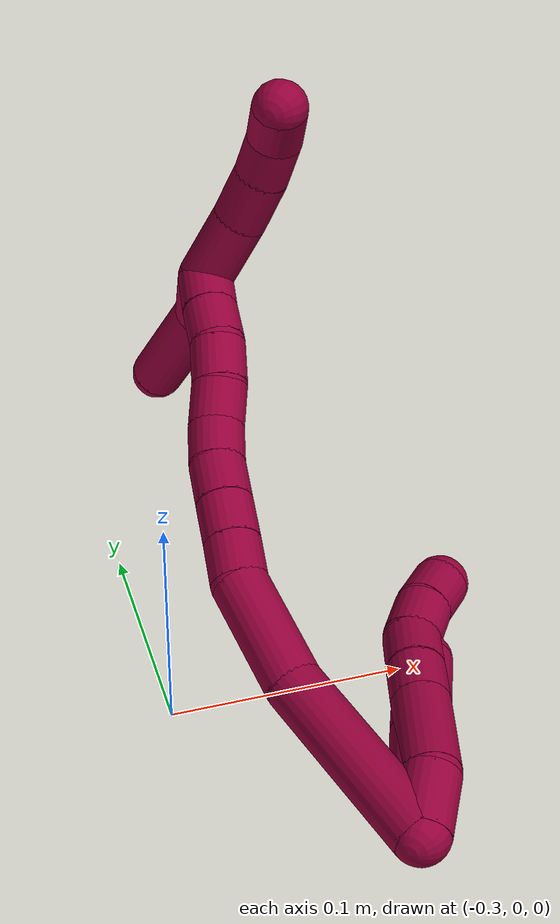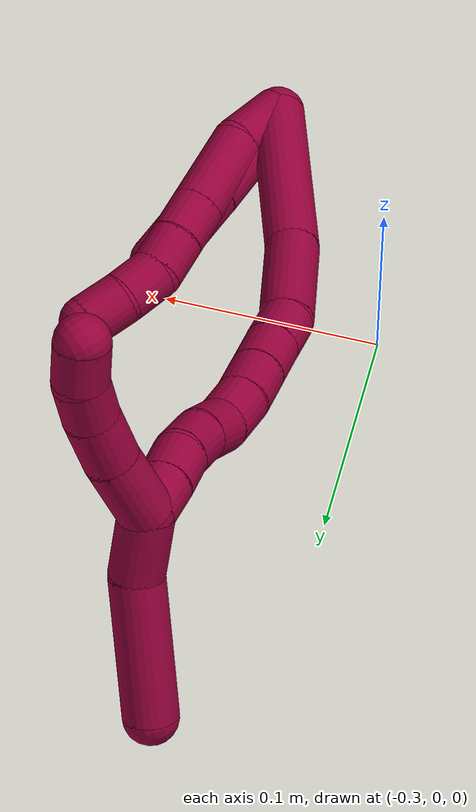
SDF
<sdf version="1.7">
 <world name="default">
  <model name="8">
   <static>0</static>
   <link name="8">
    <collision name="collision-cylinder-e_1_2_8">
     <pose>0.002889 0.004306 -0.013297 -2.82839 0.203852 -1.14964</pose>
     <geometry><cylinder><radius>0.0125</radius><length>0.028545</length></cylinder></geometry>
     <surface>
      <friction><ode><mu>1.16</mu><mu2>1.16</mu2><slip1>0</slip1><slip2>0</slip2></ode></friction>
      <contact><ode><kp>1e+06</kp><kd>1</kd><max_vel>0</max_vel><min_depth>0.001</min_depth></ode></contact>
     </surface>
    </collision>
    <visual name="visual-cylinder-e_1_2_8">
     <pose>0.002889 0.004306 -0.013297 -2.82839 0.203852 -1.14964</pose>
     <geometry><cylinder><radius>0.0125</radius><length>0.028545</length></cylinder></geometry>
     <material><ambient>0.584314 0 0.227451 1</ambient></material>
    </visual>
    <collision name="collision-cylinder-e_2_8_9">
     <pose>0.005214 0.018646 -0.04421 -2.62382 -0.02785 0.105074</pose>
     <geometry><cylinder><radius>0.0125</radius><length>0.04056</length></cylinder></geometry>
     <surface>
      <friction><ode><mu>1.16</mu><mu2>1.16</mu2><slip1>0</slip1><slip2>0</slip2></ode></friction>
      <contact><ode><kp>1e+06</kp><kd>1</kd><max_vel>0</max_vel><min_depth>0.001</min_depth></ode></contact>
     </surface>
    </collision>
    <visual name="visual-cylinder-e_2_8_9">
     <pose>0.005214 0.018646 -0.04421 -2.62382 -0.02785 0.105074</pose>
     <geometry><cylinder><radius>0.0125</radius><length>0.04056</length></cylinder></geometry>
     <material><ambient>0.584314 0 0.227451 1</ambient></material>
    </visual>
    <collision name="collision-cylinder-e_3_9_10">
     <pose>0.004427 0.033683 -0.070537 -2.62032 -0.022083 0.082756</pose>
     <geometry><cylinder><radius>0.0125</radius><length>0.020099</length></cylinder></geometry>
     <surface>
      <friction><ode><mu>1.16</mu><mu2>1.16</mu2><slip1>0</slip1><slip2>0</slip2></ode></friction>
      <contact><ode><kp>1e+06</kp><kd>1</kd><max_vel>0</max_vel><min_depth>0.001</min_depth></ode></contact>
     </surface>
    </collision>
    <visual name="visual-cylinder-e_3_9_10">
     <pose>0.004427 0.033683 -0.070537 -2.62032 -0.022083 0.082756</pose>
     <geometry><cylinder><radius>0.0125</radius><length>0.020099</length></cylinder></geometry>
     <material><ambient>0.584314 0 0.227451 1</ambient></material>
    </visual>
    <collision name="collision-cylinder-e_4_10_11">
     <pose>0.003386 0.043405 -0.0881 -2.65181 -0.081487 0.323401</pose>
     <geometry><cylinder><radius>0.0125</radius><length>0.020125</length></cylinder></geometry>
     <surface>
      <friction><ode><mu>1.16</mu><mu2>1.16</mu2><slip1>0</slip1><slip2>0</slip2></ode></friction>
      <contact><ode><kp>1e+06</kp><kd>1</kd><max_vel>0</max_vel><min_depth>0.001</min_depth></ode></contact>
     </surface>
    </collision>
    <visual name="visual-cylinder-e_4_10_11">
     <pose>0.003386 0.043405 -0.0881 -2.65181 -0.081487 0.323401</pose>
     <geometry><cylinder><radius>0.0125</radius><length>0.020125</length></cylinder></geometry>
     <material><ambient>0.584314 0 0.227451 1</ambient></material>
    </visual>
    <collision name="collision-cylinder-e_5_11_12">
     <pose>0.00312 0.049994 -0.106934 -2.95634 0.054384 -0.569662</pose>
     <geometry><cylinder><radius>0.0125</radius><length>0.020344</length></cylinder></geometry>
     <surface>
      <friction><ode><mu>1.16</mu><mu2>1.16</mu2><slip1>0</slip1><slip2>0</slip2></ode></friction>
      <contact><ode><kp>1e+06</kp><kd>1</kd><max_vel>0</max_vel><min_depth>0.001</min_depth></ode></contact>
     </surface>
    </collision>
    <visual name="visual-cylinder-e_5_11_12">
     <pose>0.00312 0.049994 -0.106934 -2.95634 0.054384 -0.569662</pose>
     <geometry><cylinder><radius>0.0125</radius><length>0.020344</length></cylinder></geometry>
     <material><ambient>0.584314 0 0.227451 1</ambient></material>
    </visual>
    <collision name="collision-cylinder-e_6_12_6">
     <pose>0.003242 0.052166 -0.127066 -3.11197 -0.042413 1.92215</pose>
     <geometry><cylinder><radius>0.0125</radius><length>0.020326</length></cylinder></geometry>
     <surface>
      <friction><ode><mu>1.16</mu><mu2>1.16</mu2><slip1>0</slip1><slip2>0</slip2></ode></friction>
      <contact><ode><kp>1e+06</kp><kd>1</kd><max_vel>0</max_vel><min_depth>0.001</min_depth></ode></contact>
     </surface>
    </collision>
    <visual name="visual-cylinder-e_6_12_6">
     <pose>0.003242 0.052166 -0.127066 -3.11197 -0.042413 1.92215</pose>
     <geometry><cylinder><radius>0.0125</radius><length>0.020326</length></cylinder></geometry>
     <material><ambient>0.584314 0 0.227451 1</ambient></material>
    </visual>
    <collision name="collision-cylinder-e_1_2_13">
     <pose>8.7e-05 0.01138 -0.025218 -2.71769 0.003153 -0.014651</pose>
     <geometry><cylinder><radius>0.0125</radius><length>0.055334</length></cylinder></geometry>
     <surface>
      <friction><ode><mu>1.16</mu><mu2>1.16</mu2><slip1>0</slip1><slip2>0</slip2></ode></friction>
      <contact><ode><kp>1e+06</kp><kd>1</kd><max_vel>0</max_vel><min_depth>0.001</min_depth></ode></contact>
     </surface>
    </collision>
    <visual name="visual-cylinder-e_1_2_13">
     <pose>8.7e-05 0.01138 -0.025218 -2.71769 0.003153 -0.014651</pose>
     <geometry><cylinder><radius>0.0125</radius><length>0.055334</length></cylinder></geometry>
     <material><ambient>0.584314 0 0.227451 1</ambient></material>
    </visual>
    <collision name="collision-cylinder-e_2_13_5">
     <pose>-0.00057 0.031064 -0.071155 -2.76038 -0.033325 0.1723</pose>
     <geometry><cylinder><radius>0.0125</radius><length>0.044666</length></cylinder></geometry>
     <surface>
      <friction><ode><mu>1.16</mu><mu2>1.16</mu2><slip1>0</slip1><slip2>0</slip2></ode></friction>
      <contact><ode><kp>1e+06</kp><kd>1</kd><max_vel>0</max_vel><min_depth>0.001</min_depth></ode></contact>
     </surface>
    </collision>
    <visual name="visual-cylinder-e_2_13_5">
     <pose>-0.00057 0.031064 -0.071155 -2.76038 -0.033325 0.1723</pose>
     <geometry><cylinder><radius>0.0125</radius><length>0.044666</length></cylinder></geometry>
     <material><ambient>0.584314 0 0.227451 1</ambient></material>
    </visual>
    <collision name="collision-cylinder-e_1_2_14">
     <pose>0.00118 0.038288 -0.020201 -2.05629 0.02726 -0.045199</pose>
     <geometry><cylinder><radius>0.0125</radius><length>0.086613</length></cylinder></geometry>
     <surface>
      <friction><ode><mu>1.16</mu><mu2>1.16</mu2><slip1>0</slip1><slip2>0</slip2></ode></friction>
      <contact><ode><kp>1e+06</kp><kd>1</kd><max_vel>0</max_vel><min_depth>0.001</min_depth></ode></contact>
     </surface>
    </collision>
    <visual name="visual-cylinder-e_1_2_14">
     <pose>0.00118 0.038288 -0.020201 -2.05629 0.02726 -0.045199</pose>
     <geometry><cylinder><radius>0.0125</radius><length>0.086613</length></cylinder></geometry>
     <material><ambient>0.584314 0 0.227451 1</ambient></material>
    </visual>
    <collision name="collision-cylinder-e_2_14_15">
     <pose>0.007797 0.097936 -0.054674 -2.15982 0.208551 -0.38669</pose>
     <geometry><cylinder><radius>0.0125</radius><length>0.052516</length></cylinder></geometry>
     <surface>
      <friction><ode><mu>1.16</mu><mu2>1.16</mu2><slip1>0</slip1><slip2>0</slip2></ode></friction>
      <contact><ode><kp>1e+06</kp><kd>1</kd><max_vel>0</max_vel><min_depth>0.001</min_depth></ode></contact>
     </surface>
    </collision>
    <visual name="visual-cylinder-e_2_14_15">
     <pose>0.007797 0.097936 -0.054674 -2.15982 0.208551 -0.38669</pose>
     <geometry><cylinder><radius>0.0125</radius><length>0.052516</length></cylinder></geometry>
     <material><ambient>0.584314 0 0.227451 1</ambient></material>
    </visual>
    <collision name="collision-cylinder-e_3_15_16">
     <pose>0.016084 0.125516 -0.076298 -2.43946 0.287774 -0.753442</pose>
     <geometry><cylinder><radius>0.0125</radius><length>0.020088</length></cylinder></geometry>
     <surface>
      <friction><ode><mu>1.16</mu><mu2>1.16</mu2><slip1>0</slip1><slip2>0</slip2></ode></friction>
      <contact><ode><kp>1e+06</kp><kd>1</kd><max_vel>0</max_vel><min_depth>0.001</min_depth></ode></contact>
     </surface>
    </collision>
    <visual name="visual-cylinder-e_3_15_16">
     <pose>0.016084 0.125516 -0.076298 -2.43946 0.287774 -0.753442</pose>
     <geometry><cylinder><radius>0.0125</radius><length>0.020088</length></cylinder></geometry>
     <material><ambient>0.584314 0 0.227451 1</ambient></material>
    </visual>
    <collision name="collision-cylinder-e_4_16_17">
     <pose>0.021633 0.138122 -0.09103 -2.42821 0.26976 -0.698498</pose>
     <geometry><cylinder><radius>0.0125</radius><length>0.02025</length></cylinder></geometry>
     <surface>
      <friction><ode><mu>1.16</mu><mu2>1.16</mu2><slip1>0</slip1><slip2>0</slip2></ode></friction>
      <contact><ode><kp>1e+06</kp><kd>1</kd><max_vel>0</max_vel><min_depth>0.001</min_depth></ode></contact>
     </surface>
    </collision>
    <visual name="visual-cylinder-e_4_16_17">
     <pose>0.021633 0.138122 -0.09103 -2.42821 0.26976 -0.698498</pose>
     <geometry><cylinder><radius>0.0125</radius><length>0.02025</length></cylinder></geometry>
     <material><ambient>0.584314 0 0.227451 1</ambient></material>
    </visual>
    <collision name="collision-cylinder-e_5_17_18">
     <pose>0.026809 0.150865 -0.105965 -2.44216 0.245835 -0.653215</pose>
     <geometry><cylinder><radius>0.0125</radius><length>0.020361</length></cylinder></geometry>
     <surface>
      <friction><ode><mu>1.16</mu><mu2>1.16</mu2><slip1>0</slip1><slip2>0</slip2></ode></friction>
      <contact><ode><kp>1e+06</kp><kd>1</kd><max_vel>0</max_vel><min_depth>0.001</min_depth></ode></contact>
     </surface>
    </collision>
    <visual name="visual-cylinder-e_5_17_18">
     <pose>0.026809 0.150865 -0.105965 -2.44216 0.245835 -0.653215</pose>
     <geometry><cylinder><radius>0.0125</radius><length>0.020361</length></cylinder></geometry>
     <material><ambient>0.584314 0 0.227451 1</ambient></material>
    </visual>
    <collision name="collision-cylinder-e_6_18_19">
     <pose>0.032031 0.162403 -0.12171 -2.5775 0.275952 -0.893739</pose>
     <geometry><cylinder><radius>0.0125</radius><length>0.020142</length></cylinder></geometry>
     <surface>
      <friction><ode><mu>1.16</mu><mu2>1.16</mu2><slip1>0</slip1><slip2>0</slip2></ode></friction>
      <contact><ode><kp>1e+06</kp><kd>1</kd><max_vel>0</max_vel><min_depth>0.001</min_depth></ode></contact>
     </surface>
    </collision>
    <visual name="visual-cylinder-e_6_18_19">
     <pose>0.032031 0.162403 -0.12171 -2.5775 0.275952 -0.893739</pose>
     <geometry><cylinder><radius>0.0125</radius><length>0.020142</length></cylinder></geometry>
     <material><ambient>0.584314 0 0.227451 1</ambient></material>
    </visual>
    <collision name="collision-cylinder-e_7_19_20">
     <pose>0.040601 0.171635 -0.136955 -2.62041 0.621405 -1.75555</pose>
     <geometry><cylinder><radius>0.0125</radius><length>0.020016</length></cylinder></geometry>
     <surface>
      <friction><ode><mu>1.16</mu><mu2>1.16</mu2><slip1>0</slip1><slip2>0</slip2></ode></friction>
      <contact><ode><kp>1e+06</kp><kd>1</kd><max_vel>0</max_vel><min_depth>0.001</min_depth></ode></contact>
     </surface>
    </collision>
    <visual name="visual-cylinder-e_7_19_20">
     <pose>0.040601 0.171635 -0.136955 -2.62041 0.621405 -1.75555</pose>
     <geometry><cylinder><radius>0.0125</radius><length>0.020016</length></cylinder></geometry>
     <material><ambient>0.584314 0 0.227451 1</ambient></material>
    </visual>
    <collision name="collision-cylinder-e_8_20_21">
     <pose>0.05092 0.180968 -0.151226 -2.5096 0.465596 -1.25484</pose>
     <geometry><cylinder><radius>0.0125</radius><length>0.020012</length></cylinder></geometry>
     <surface>
      <friction><ode><mu>1.16</mu><mu2>1.16</mu2><slip1>0</slip1><slip2>0</slip2></ode></friction>
      <contact><ode><kp>1e+06</kp><kd>1</kd><max_vel>0</max_vel><min_depth>0.001</min_depth></ode></contact>
     </surface>
    </collision>
    <visual name="visual-cylinder-e_8_20_21">
     <pose>0.05092 0.180968 -0.151226 -2.5096 0.465596 -1.25484</pose>
     <geometry><cylinder><radius>0.0125</radius><length>0.020012</length></cylinder></geometry>
     <material><ambient>0.584314 0 0.227451 1</ambient></material>
    </visual>
    <collision name="collision-cylinder-e_9_21_22">
     <pose>0.05774 0.192607 -0.165801 -2.42928 0.234894 -0.614245</pose>
     <geometry><cylinder><radius>0.0125</radius><length>0.020001</length></cylinder></geometry>
     <surface>
      <friction><ode><mu>1.16</mu><mu2>1.16</mu2><slip1>0</slip1><slip2>0</slip2></ode></friction>
      <contact><ode><kp>1e+06</kp><kd>1</kd><max_vel>0</max_vel><min_depth>0.001</min_depth></ode></contact>
     </surface>
    </collision>
    <visual name="visual-cylinder-e_9_21_22">
     <pose>0.05774 0.192607 -0.165801 -2.42928 0.234894 -0.614245</pose>
     <geometry><cylinder><radius>0.0125</radius><length>0.020001</length></cylinder></geometry>
     <material><ambient>0.584314 0 0.227451 1</ambient></material>
    </visual>
    <collision name="collision-cylinder-e_10_22_1">
     <pose>0.062481 0.204868 -0.180865 -2.48761 0.243772 -0.693164</pose>
     <geometry><cylinder><radius>0.0125</radius><length>0.020002</length></cylinder></geometry>
     <surface>
      <friction><ode><mu>1.16</mu><mu2>1.16</mu2><slip1>0</slip1><slip2>0</slip2></ode></friction>
      <contact><ode><kp>1e+06</kp><kd>1</kd><max_vel>0</max_vel><min_depth>0.001</min_depth></ode></contact>
     </surface>
    </collision>
    <visual name="visual-cylinder-e_10_22_1">
     <pose>0.062481 0.204868 -0.180865 -2.48761 0.243772 -0.693164</pose>
     <geometry><cylinder><radius>0.0125</radius><length>0.020002</length></cylinder></geometry>
     <material><ambient>0.584314 0 0.227451 1</ambient></material>
    </visual>
    <collision name="collision-cylinder-e_1_1_23">
     <pose>0.081376 0.206528 -0.191327 2.14719 1.27279 1.87474</pose>
     <geometry><cylinder><radius>0.0125</radius><length>0.034482</length></cylinder></geometry>
     <surface>
      <friction><ode><mu>1.16</mu><mu2>1.16</mu2><slip1>0</slip1><slip2>0</slip2></ode></friction>
      <contact><ode><kp>1e+06</kp><kd>1</kd><max_vel>0</max_vel><min_depth>0.001</min_depth></ode></contact>
     </surface>
    </collision>
    <visual name="visual-cylinder-e_1_1_23">
     <pose>0.081376 0.206528 -0.191327 2.14719 1.27279 1.87474</pose>
     <geometry><cylinder><radius>0.0125</radius><length>0.034482</length></cylinder></geometry>
     <material><ambient>0.584314 0 0.227451 1</ambient></material>
    </visual>
    <collision name="collision-cylinder-e_2_23_24">
     <pose>0.110228 0.19963 -0.194826 1.84301 1.35174 1.62557</pose>
     <geometry><cylinder><radius>0.0125</radius><length>0.025347</length></cylinder></geometry>
     <surface>
      <friction><ode><mu>1.16</mu><mu2>1.16</mu2><slip1>0</slip1><slip2>0</slip2></ode></friction>
      <contact><ode><kp>1e+06</kp><kd>1</kd><max_vel>0</max_vel><min_depth>0.001</min_depth></ode></contact>
     </surface>
    </collision>
    <visual name="visual-cylinder-e_2_23_24">
     <pose>0.110228 0.19963 -0.194826 1.84301 1.35174 1.62557</pose>
     <geometry><cylinder><radius>0.0125</radius><length>0.025347</length></cylinder></geometry>
     <material><ambient>0.584314 0 0.227451 1</ambient></material>
    </visual>
    <collision name="collision-cylinder-e_3_24_25">
     <pose>0.132586 0.195658 -0.195228 1.31991 1.43521 1.19073</pose>
     <geometry><cylinder><radius>0.0125</radius><length>0.020158</length></cylinder></geometry>
     <surface>
      <friction><ode><mu>1.16</mu><mu2>1.16</mu2><slip1>0</slip1><slip2>0</slip2></ode></friction>
      <contact><ode><kp>1e+06</kp><kd>1</kd><max_vel>0</max_vel><min_depth>0.001</min_depth></ode></contact>
     </surface>
    </collision>
    <visual name="visual-cylinder-e_3_24_25">
     <pose>0.132586 0.195658 -0.195228 1.31991 1.43521 1.19073</pose>
     <geometry><cylinder><radius>0.0125</radius><length>0.020158</length></cylinder></geometry>
     <material><ambient>0.584314 0 0.227451 1</ambient></material>
    </visual>
    <collision name="collision-cylinder-e_4_25_4">
     <pose>0.152044 0.193405 -0.191802 0.293484 1.2425 0.210812</pose>
     <geometry><cylinder><radius>0.0125</radius><length>0.020012</length></cylinder></geometry>
     <surface>
      <friction><ode><mu>1.16</mu><mu2>1.16</mu2><slip1>0</slip1><slip2>0</slip2></ode></friction>
      <contact><ode><kp>1e+06</kp><kd>1</kd><max_vel>0</max_vel><min_depth>0.001</min_depth></ode></contact>
     </surface>
    </collision>
    <visual name="visual-cylinder-e_4_25_4">
     <pose>0.152044 0.193405 -0.191802 0.293484 1.2425 0.210812</pose>
     <geometry><cylinder><radius>0.0125</radius><length>0.020012</length></cylinder></geometry>
     <material><ambient>0.584314 0 0.227451 1</ambient></material>
    </visual>
    <collision name="collision-cylinder-e_1_1_26">
     <pose>0.050443 0.21257 -0.19525 -2.8787 -1.12424 2.72782</pose>
     <geometry><cylinder><radius>0.0125</radius><length>0.032047</length></cylinder></geometry>
     <surface>
      <friction><ode><mu>1.16</mu><mu2>1.16</mu2><slip1>0</slip1><slip2>0</slip2></ode></friction>
      <contact><ode><kp>1e+06</kp><kd>1</kd><max_vel>0</max_vel><min_depth>0.001</min_depth></ode></contact>
     </surface>
    </collision>
    <visual name="visual-cylinder-e_1_1_26">
     <pose>0.050443 0.21257 -0.19525 -2.8787 -1.12424 2.72782</pose>
     <geometry><cylinder><radius>0.0125</radius><length>0.032047</length></cylinder></geometry>
     <material><ambient>0.584314 0 0.227451 1</ambient></material>
    </visual>
    <collision name="collision-cylinder-e_2_26_3">
     <pose>0.006014 0.22674 -0.212068 -2.25723 -1.0807 1.80535</pose>
     <geometry><cylinder><radius>0.0125</radius><length>0.067953</length></cylinder></geometry>
     <surface>
      <friction><ode><mu>1.16</mu><mu2>1.16</mu2><slip1>0</slip1><slip2>0</slip2></ode></friction>
      <contact><ode><kp>1e+06</kp><kd>1</kd><max_vel>0</max_vel><min_depth>0.001</min_depth></ode></contact>
     </surface>
    </collision>
    <visual name="visual-cylinder-e_2_26_3">
     <pose>0.006014 0.22674 -0.212068 -2.25723 -1.0807 1.80535</pose>
     <geometry><cylinder><radius>0.0125</radius><length>0.067953</length></cylinder></geometry>
     <material><ambient>0.584314 0 0.227451 1</ambient></material>
    </visual>
    <collision name="collision-sphere-3">
     <pose>-0.023964 0.239111 -0.222204 0 -0 0</pose>
     <geometry><sphere><radius>0.0125</radius></sphere></geometry>
     <surface>
      <friction><ode><mu>1.16</mu><mu2>1.16</mu2><slip1>0</slip1><slip2>0</slip2></ode></friction>
      <contact><ode><kp>1e+06</kp><kd>1</kd><max_vel>0</max_vel><min_depth>0.001</min_depth></ode></contact>
     </surface>
    </collision>
    <visual name="visual-sphere-3">
     <pose>-0.023964 0.239111 -0.222204 0 -0 0</pose>
     <geometry><sphere><radius>0.0125</radius></sphere></geometry>
     <material><ambient>0.584314 0 0.227451 1</ambient></material>
    </visual>
    <collision name="collision-sphere-26">
     <pose>0.035991 0.214369 -0.201932 0 -0 0</pose>
     <geometry><sphere><radius>0.0125</radius></sphere></geometry>
     <surface>
      <friction><ode><mu>1.16</mu><mu2>1.16</mu2><slip1>0</slip1><slip2>0</slip2></ode></friction>
      <contact><ode><kp>1e+06</kp><kd>1</kd><max_vel>0</max_vel><min_depth>0.001</min_depth></ode></contact>
     </surface>
    </collision>
    <visual name="visual-sphere-26">
     <pose>0.035991 0.214369 -0.201932 0 -0 0</pose>
     <geometry><sphere><radius>0.0125</radius></sphere></geometry>
     <material><ambient>0.584314 0 0.227451 1</ambient></material>
    </visual>
    <collision name="collision-sphere-4">
     <pose>0.161516 0.192472 -0.188714 0 -0 0</pose>
     <geometry><sphere><radius>0.0125</radius></sphere></geometry>
     <surface>
      <friction><ode><mu>1.16</mu><mu2>1.16</mu2><slip1>0</slip1><slip2>0</slip2></ode></friction>
      <contact><ode><kp>1e+06</kp><kd>1</kd><max_vel>0</max_vel><min_depth>0.001</min_depth></ode></contact>
     </surface>
    </collision>
    <visual name="visual-sphere-4">
     <pose>0.161516 0.192472 -0.188714 0 -0 0</pose>
     <geometry><sphere><radius>0.0125</radius></sphere></geometry>
     <material><ambient>0.584314 0 0.227451 1</ambient></material>
    </visual>
    <collision name="collision-sphere-25">
     <pose>0.142573 0.194338 -0.19489 0 -0 0</pose>
     <geometry><sphere><radius>0.0125</radius></sphere></geometry>
     <surface>
      <friction><ode><mu>1.16</mu><mu2>1.16</mu2><slip1>0</slip1><slip2>0</slip2></ode></friction>
      <contact><ode><kp>1e+06</kp><kd>1</kd><max_vel>0</max_vel><min_depth>0.001</min_depth></ode></contact>
     </surface>
    </collision>
    <visual name="visual-sphere-25">
     <pose>0.142573 0.194338 -0.19489 0 -0 0</pose>
     <geometry><sphere><radius>0.0125</radius></sphere></geometry>
     <material><ambient>0.584314 0 0.227451 1</ambient></material>
    </visual>
    <collision name="collision-sphere-24">
     <pose>0.122599 0.196978 -0.195567 0 -0 0</pose>
     <geometry><sphere><radius>0.0125</radius></sphere></geometry>
     <surface>
      <friction><ode><mu>1.16</mu><mu2>1.16</mu2><slip1>0</slip1><slip2>0</slip2></ode></friction>
      <contact><ode><kp>1e+06</kp><kd>1</kd><max_vel>0</max_vel><min_depth>0.001</min_depth></ode></contact>
     </surface>
    </collision>
    <visual name="visual-sphere-24">
     <pose>0.122599 0.196978 -0.195567 0 -0 0</pose>
     <geometry><sphere><radius>0.0125</radius></sphere></geometry>
     <material><ambient>0.584314 0 0.227451 1</ambient></material>
    </visual>
    <collision name="collision-sphere-23">
     <pose>0.097858 0.202283 -0.194086 0 -0 0</pose>
     <geometry><sphere><radius>0.0125</radius></sphere></geometry>
     <surface>
      <friction><ode><mu>1.16</mu><mu2>1.16</mu2><slip1>0</slip1><slip2>0</slip2></ode></friction>
      <contact><ode><kp>1e+06</kp><kd>1</kd><max_vel>0</max_vel><min_depth>0.001</min_depth></ode></contact>
     </surface>
    </collision>
    <visual name="visual-sphere-23">
     <pose>0.097858 0.202283 -0.194086 0 -0 0</pose>
     <geometry><sphere><radius>0.0125</radius></sphere></geometry>
     <material><ambient>0.584314 0 0.227451 1</ambient></material>
    </visual>
    <collision name="collision-sphere-1">
     <pose>0.064895 0.210772 -0.188568 0 -0 0</pose>
     <geometry><sphere><radius>0.0125</radius></sphere></geometry>
     <surface>
      <friction><ode><mu>1.16</mu><mu2>1.16</mu2><slip1>0</slip1><slip2>0</slip2></ode></friction>
      <contact><ode><kp>1e+06</kp><kd>1</kd><max_vel>0</max_vel><min_depth>0.001</min_depth></ode></contact>
     </surface>
    </collision>
    <visual name="visual-sphere-1">
     <pose>0.064895 0.210772 -0.188568 0 -0 0</pose>
     <geometry><sphere><radius>0.0125</radius></sphere></geometry>
     <material><ambient>0.584314 0 0.227451 1</ambient></material>
    </visual>
    <collision name="collision-sphere-22">
     <pose>0.060067 0.198964 -0.173162 0 -0 0</pose>
     <geometry><sphere><radius>0.0125</radius></sphere></geometry>
     <surface>
      <friction><ode><mu>1.16</mu><mu2>1.16</mu2><slip1>0</slip1><slip2>0</slip2></ode></friction>
      <contact><ode><kp>1e+06</kp><kd>1</kd><max_vel>0</max_vel><min_depth>0.001</min_depth></ode></contact>
     </surface>
    </collision>
    <visual name="visual-sphere-22">
     <pose>0.060067 0.198964 -0.173162 0 -0 0</pose>
     <geometry><sphere><radius>0.0125</radius></sphere></geometry>
     <material><ambient>0.584314 0 0.227451 1</ambient></material>
    </visual>
    <collision name="collision-sphere-21">
     <pose>0.055412 0.18625 -0.15844 0 -0 0</pose>
     <geometry><sphere><radius>0.0125</radius></sphere></geometry>
     <surface>
      <friction><ode><mu>1.16</mu><mu2>1.16</mu2><slip1>0</slip1><slip2>0</slip2></ode></friction>
      <contact><ode><kp>1e+06</kp><kd>1</kd><max_vel>0</max_vel><min_depth>0.001</min_depth></ode></contact>
     </surface>
    </collision>
    <visual name="visual-sphere-21">
     <pose>0.055412 0.18625 -0.15844 0 -0 0</pose>
     <geometry><sphere><radius>0.0125</radius></sphere></geometry>
     <material><ambient>0.584314 0 0.227451 1</ambient></material>
    </visual>
    <collision name="collision-sphere-12">
     <pose>0.003673 0.051865 -0.116917 0 -0 0</pose>
     <geometry><sphere><radius>0.0125</radius></sphere></geometry>
     <surface>
      <friction><ode><mu>1.16</mu><mu2>1.16</mu2><slip1>0</slip1><slip2>0</slip2></ode></friction>
      <contact><ode><kp>1e+06</kp><kd>1</kd><max_vel>0</max_vel><min_depth>0.001</min_depth></ode></contact>
     </surface>
    </collision>
    <visual name="visual-sphere-12">
     <pose>0.003673 0.051865 -0.116917 0 -0 0</pose>
     <geometry><sphere><radius>0.0125</radius></sphere></geometry>
     <material><ambient>0.584314 0 0.227451 1</ambient></material>
    </visual>
    <collision name="collision-sphere-11">
     <pose>0.002567 0.048123 -0.09695 0 -0 0</pose>
     <geometry><sphere><radius>0.0125</radius></sphere></geometry>
     <surface>
      <friction><ode><mu>1.16</mu><mu2>1.16</mu2><slip1>0</slip1><slip2>0</slip2></ode></friction>
      <contact><ode><kp>1e+06</kp><kd>1</kd><max_vel>0</max_vel><min_depth>0.001</min_depth></ode></contact>
     </surface>
    </collision>
    <visual name="visual-sphere-11">
     <pose>0.002567 0.048123 -0.09695 0 -0 0</pose>
     <geometry><sphere><radius>0.0125</radius></sphere></geometry>
     <material><ambient>0.584314 0 0.227451 1</ambient></material>
    </visual>
    <collision name="collision-sphere-10">
     <pose>0.004206 0.038687 -0.07925 0 -0 0</pose>
     <geometry><sphere><radius>0.0125</radius></sphere></geometry>
     <surface>
      <friction><ode><mu>1.16</mu><mu2>1.16</mu2><slip1>0</slip1><slip2>0</slip2></ode></friction>
      <contact><ode><kp>1e+06</kp><kd>1</kd><max_vel>0</max_vel><min_depth>0.001</min_depth></ode></contact>
     </surface>
    </collision>
    <visual name="visual-sphere-10">
     <pose>0.004206 0.038687 -0.07925 0 -0 0</pose>
     <geometry><sphere><radius>0.0125</radius></sphere></geometry>
     <material><ambient>0.584314 0 0.227451 1</ambient></material>
    </visual>
    <collision name="collision-sphere-9">
     <pose>0.004649 0.02868 -0.061825 0 -0 0</pose>
     <geometry><sphere><radius>0.0125</radius></sphere></geometry>
     <surface>
      <friction><ode><mu>1.16</mu><mu2>1.16</mu2><slip1>0</slip1><slip2>0</slip2></ode></friction>
      <contact><ode><kp>1e+06</kp><kd>1</kd><max_vel>0</max_vel><min_depth>0.001</min_depth></ode></contact>
     </surface>
    </collision>
    <visual name="visual-sphere-9">
     <pose>0.004649 0.02868 -0.061825 0 -0 0</pose>
     <geometry><sphere><radius>0.0125</radius></sphere></geometry>
     <material><ambient>0.584314 0 0.227451 1</ambient></material>
    </visual>
    <collision name="collision-sphere-2">
     <geometry><sphere><radius>0.0125</radius></sphere></geometry>
     <surface>
      <friction><ode><mu>1.16</mu><mu2>1.16</mu2><slip1>0</slip1><slip2>0</slip2></ode></friction>
      <contact><ode><kp>1e+06</kp><kd>1</kd><max_vel>0</max_vel><min_depth>0.001</min_depth></ode></contact>
     </surface>
    </collision>
    <visual name="visual-sphere-2">
     <geometry><sphere><radius>0.0125</radius></sphere></geometry>
     <material><ambient>0.584314 0 0.227451 1</ambient></material>
    </visual>
    <collision name="collision-sphere-19">
     <pose>0.034775 0.167584 -0.129899 0 -0 0</pose>
     <geometry><sphere><radius>0.0125</radius></sphere></geometry>
     <surface>
      <friction><ode><mu>1.16</mu><mu2>1.16</mu2><slip1>0</slip1><slip2>0</slip2></ode></friction>
      <contact><ode><kp>1e+06</kp><kd>1</kd><max_vel>0</max_vel><min_depth>0.001</min_depth></ode></contact>
     </surface>
    </collision>
    <visual name="visual-sphere-19">
     <pose>0.034775 0.167584 -0.129899 0 -0 0</pose>
     <geometry><sphere><radius>0.0125</radius></sphere></geometry>
     <material><ambient>0.584314 0 0.227451 1</ambient></material>
    </visual>
    <collision name="collision-sphere-8">
     <pose>0.005779 0.008613 -0.026594 0 -0 0</pose>
     <geometry><sphere><radius>0.0125</radius></sphere></geometry>
     <surface>
      <friction><ode><mu>1.16</mu><mu2>1.16</mu2><slip1>0</slip1><slip2>0</slip2></ode></friction>
      <contact><ode><kp>1e+06</kp><kd>1</kd><max_vel>0</max_vel><min_depth>0.001</min_depth></ode></contact>
     </surface>
    </collision>
    <visual name="visual-sphere-8">
     <pose>0.005779 0.008613 -0.026594 0 -0 0</pose>
     <geometry><sphere><radius>0.0125</radius></sphere></geometry>
     <material><ambient>0.584314 0 0.227451 1</ambient></material>
    </visual>
    <collision name="collision-sphere-6">
     <pose>0.002811 0.052466 -0.137215 0 -0 0</pose>
     <geometry><sphere><radius>0.0125</radius></sphere></geometry>
     <surface>
      <friction><ode><mu>1.16</mu><mu2>1.16</mu2><slip1>0</slip1><slip2>0</slip2></ode></friction>
      <contact><ode><kp>1e+06</kp><kd>1</kd><max_vel>0</max_vel><min_depth>0.001</min_depth></ode></contact>
     </surface>
    </collision>
    <visual name="visual-sphere-6">
     <pose>0.002811 0.052466 -0.137215 0 -0 0</pose>
     <geometry><sphere><radius>0.0125</radius></sphere></geometry>
     <material><ambient>0.584314 0 0.227451 1</ambient></material>
    </visual>
    <collision name="collision-sphere-13">
     <pose>0.000174 0.02276 -0.050436 0 -0 0</pose>
     <geometry><sphere><radius>0.0125</radius></sphere></geometry>
     <surface>
      <friction><ode><mu>1.16</mu><mu2>1.16</mu2><slip1>0</slip1><slip2>0</slip2></ode></friction>
      <contact><ode><kp>1e+06</kp><kd>1</kd><max_vel>0</max_vel><min_depth>0.001</min_depth></ode></contact>
     </surface>
    </collision>
    <visual name="visual-sphere-13">
     <pose>0.000174 0.02276 -0.050436 0 -0 0</pose>
     <geometry><sphere><radius>0.0125</radius></sphere></geometry>
     <material><ambient>0.584314 0 0.227451 1</ambient></material>
    </visual>
    <collision name="collision-sphere-5">
     <pose>-0.001314 0.039368 -0.091873 0 -0 0</pose>
     <geometry><sphere><radius>0.0125</radius></sphere></geometry>
     <surface>
      <friction><ode><mu>1.16</mu><mu2>1.16</mu2><slip1>0</slip1><slip2>0</slip2></ode></friction>
      <contact><ode><kp>1e+06</kp><kd>1</kd><max_vel>0</max_vel><min_depth>0.001</min_depth></ode></contact>
     </surface>
    </collision>
    <visual name="visual-sphere-5">
     <pose>-0.001314 0.039368 -0.091873 0 -0 0</pose>
     <geometry><sphere><radius>0.0125</radius></sphere></geometry>
     <material><ambient>0.584314 0 0.227451 1</ambient></material>
    </visual>
    <collision name="collision-sphere-14">
     <pose>0.002361 0.076576 -0.040402 0 -0 0</pose>
     <geometry><sphere><radius>0.0125</radius></sphere></geometry>
     <surface>
      <friction><ode><mu>1.16</mu><mu2>1.16</mu2><slip1>0</slip1><slip2>0</slip2></ode></friction>
      <contact><ode><kp>1e+06</kp><kd>1</kd><max_vel>0</max_vel><min_depth>0.001</min_depth></ode></contact>
     </surface>
    </collision>
    <visual name="visual-sphere-14">
     <pose>0.002361 0.076576 -0.040402 0 -0 0</pose>
     <geometry><sphere><radius>0.0125</radius></sphere></geometry>
     <material><ambient>0.584314 0 0.227451 1</ambient></material>
    </visual>
    <collision name="collision-sphere-15">
     <pose>0.013234 0.119296 -0.068945 0 -0 0</pose>
     <geometry><sphere><radius>0.0125</radius></sphere></geometry>
     <surface>
      <friction><ode><mu>1.16</mu><mu2>1.16</mu2><slip1>0</slip1><slip2>0</slip2></ode></friction>
      <contact><ode><kp>1e+06</kp><kd>1</kd><max_vel>0</max_vel><min_depth>0.001</min_depth></ode></contact>
     </surface>
    </collision>
    <visual name="visual-sphere-15">
     <pose>0.013234 0.119296 -0.068945 0 -0 0</pose>
     <geometry><sphere><radius>0.0125</radius></sphere></geometry>
     <material><ambient>0.584314 0 0.227451 1</ambient></material>
    </visual>
    <collision name="collision-sphere-16">
     <pose>0.018935 0.131736 -0.083651 0 -0 0</pose>
     <geometry><sphere><radius>0.0125</radius></sphere></geometry>
     <surface>
      <friction><ode><mu>1.16</mu><mu2>1.16</mu2><slip1>0</slip1><slip2>0</slip2></ode></friction>
      <contact><ode><kp>1e+06</kp><kd>1</kd><max_vel>0</max_vel><min_depth>0.001</min_depth></ode></contact>
     </surface>
    </collision>
    <visual name="visual-sphere-16">
     <pose>0.018935 0.131736 -0.083651 0 -0 0</pose>
     <geometry><sphere><radius>0.0125</radius></sphere></geometry>
     <material><ambient>0.584314 0 0.227451 1</ambient></material>
    </visual>
    <collision name="collision-sphere-17">
     <pose>0.024332 0.144508 -0.098409 0 -0 0</pose>
     <geometry><sphere><radius>0.0125</radius></sphere></geometry>
     <surface>
      <friction><ode><mu>1.16</mu><mu2>1.16</mu2><slip1>0</slip1><slip2>0</slip2></ode></friction>
      <contact><ode><kp>1e+06</kp><kd>1</kd><max_vel>0</max_vel><min_depth>0.001</min_depth></ode></contact>
     </surface>
    </collision>
    <visual name="visual-sphere-17">
     <pose>0.024332 0.144508 -0.098409 0 -0 0</pose>
     <geometry><sphere><radius>0.0125</radius></sphere></geometry>
     <material><ambient>0.584314 0 0.227451 1</ambient></material>
    </visual>
    <collision name="collision-sphere-18">
     <pose>0.029287 0.157222 -0.113521 0 -0 0</pose>
     <geometry><sphere><radius>0.0125</radius></sphere></geometry>
     <surface>
      <friction><ode><mu>1.16</mu><mu2>1.16</mu2><slip1>0</slip1><slip2>0</slip2></ode></friction>
      <contact><ode><kp>1e+06</kp><kd>1</kd><max_vel>0</max_vel><min_depth>0.001</min_depth></ode></contact>
     </surface>
    </collision>
    <visual name="visual-sphere-18">
     <pose>0.029287 0.157222 -0.113521 0 -0 0</pose>
     <geometry><sphere><radius>0.0125</radius></sphere></geometry>
     <material><ambient>0.584314 0 0.227451 1</ambient></material>
    </visual>
    <collision name="collision-sphere-20">
     <pose>0.046428 0.175686 -0.144012 0 -0 0</pose>
     <geometry><sphere><radius>0.0125</radius></sphere></geometry>
     <surface>
      <friction><ode><mu>1.16</mu><mu2>1.16</mu2><slip1>0</slip1><slip2>0</slip2></ode></friction>
      <contact><ode><kp>1e+06</kp><kd>1</kd><max_vel>0</max_vel><min_depth>0.001</min_depth></ode></contact>
     </surface>
    </collision>
    <visual name="visual-sphere-20">
     <pose>0.046428 0.175686 -0.144012 0 -0 0</pose>
     <geometry><sphere><radius>0.0125</radius></sphere></geometry>
     <material><ambient>0.584314 0 0.227451 1</ambient></material>
    </visual>
    <inertial>
     <pose>0.027468 0.111824 -0.10664 0 -0 0</pose>
     <mass>0.75</mass>
     <inertia>
      <ixx>0.000116</ixx>
      <ixy>0</ixy>
      <ixz>0</ixz>
      <iyy>-8e-06</iyy>
      <iyz>0</iyz>
      <izz>-0.000118</izz>
     </inertia>
    </inertial>
   </link>
   <pose>-0.226012 -0.104984 0.015195 1.10206 -1.38022 -0.277231</pose>
  </model>
 </world>
</sdf>
